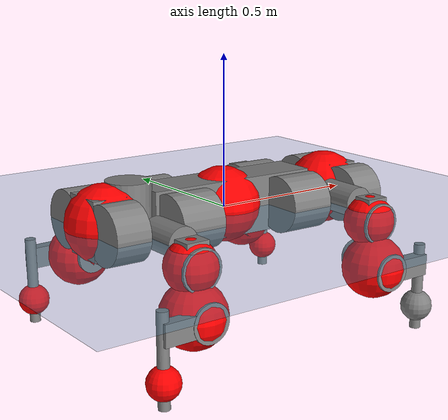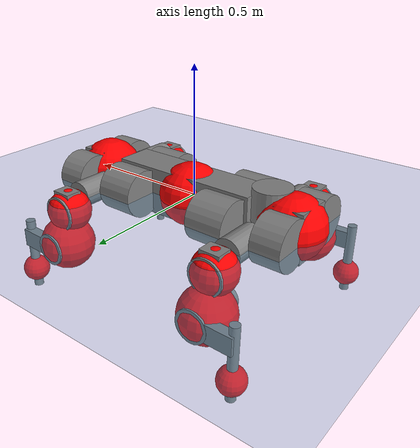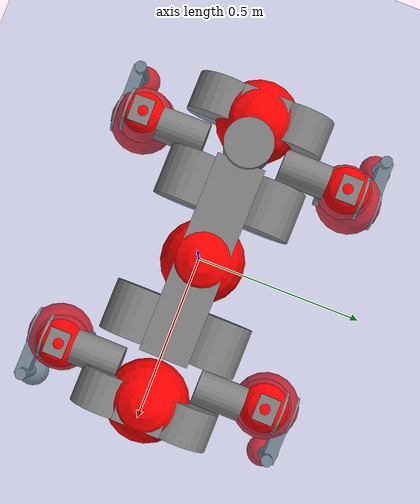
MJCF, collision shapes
<mujoco model="anymal_c">
  <compiler angle="radian" assetdir="assets" balanceinertia="true" inertiafromgeom="false"/>

  <option timestep="0.005" density="1.2" viscosity="2e-05"/>

  <size nkey="1"/>

  <visual>
    <quality shadowsize="8192"/>
    <map shadowclip="0.5"/>
  </visual>

  <default>
    <default class="/">
      <material specular="0" shininess="0.25"/>
      <geom contype="0" conaffinity="0" group="1" solref="-1000 -80"/>
      <site size="0.01 0.005 0.005" group="5"/>
      <general forcelimited="true" forcerange="-80 80" biastype="affine" gainprm="80" biasprm="0 -80 -2"/>
      <default class="anymal_c">
        <joint armature="0.01" damping="0.01" frictionloss="0.1"/>
        <default class="visual">
          <geom type="mesh" group="2"/>
          <default class="visual_zflip"/>
        </default>
        <default class="collision">
          <geom type="cylinder" group="3"/>
          <default class="foot">
            <geom size="0.03 0 0" type="sphere" condim="6" priority="1" friction="0.8 0.02 0.01" solimp="0.015 1 0.03"/>
          </default>
        </default>
      </default>
      <default class="reward_collision_sphere">
        <geom group="5" rgba="1 0 0 1"/>
      </default>
    </default>
  </default>

  <asset>
    <texture type="skybox" colorspace="auto" name="//unnamed_texture_0" builtin="gradient" rgb1="0.95 0.95 0.95" rgb2="0.95 0.95 0.95" width="100" height="600"/>
    <texture type="2d" colorspace="auto" name="texplane" builtin="checker" rgb1="0.345 0.575 0.748" rgb2="0.345 0.575 0.748" markrgb="1 1 1" width="512" height="512"/>
    <texture type="2d" colorspace="linear" name="base" file="base.png"/>
    <texture type="2d" colorspace="linear" name="top_shell" file="top_shell.png"/>
    <texture type="2d" colorspace="linear" name="bottom_shell" file="bottom_shell.png"/>
    <texture type="2d" colorspace="linear" name="remote" file="remote.png"/>
    <texture type="2d" colorspace="linear" name="hatch" file="hatch.png"/>
    <texture type="2d" colorspace="linear" name="handle" file="handle.png"/>
    <texture type="2d" colorspace="linear" name="face" file="face.png"/>
    <texture type="2d" colorspace="linear" name="battery" file="battery.png"/>
    <texture type="2d" colorspace="linear" name="lidar_cage" file="lidar_cage.png"/>
    <texture type="2d" colorspace="linear" name="depth_camera" file="depth_camera.png"/>
    <texture type="2d" colorspace="linear" name="wide_angle_camera" file="wide_angle_camera.png"/>
    <texture type="2d" colorspace="linear" name="lidar" file="lidar.png"/>
    <texture type="2d" colorspace="linear" name="drive" file="drive.png"/>
    <texture type="2d" colorspace="linear" name="hip_l" file="hip_l.png"/>
    <texture type="2d" colorspace="linear" name="shank_l" file="shank_l.png"/>
    <texture type="2d" colorspace="linear" name="foot" file="foot.png"/>
    <texture type="2d" colorspace="linear" name="thigh" file="thigh.png"/>
    <texture type="2d" colorspace="linear" name="shank_r" file="shank_r.png"/>
    <texture type="2d" colorspace="linear" name="hip_r" file="hip_r.png"/>
    <material name="MatPlane" class="/" texture="texplane" texuniform="true" texrepeat="2 2" specular="0.9" shininess="0.5"/>
    <material name="black_plastic" class="/" rgba="0.007 0.007 0.007 1"/>
    <material name="green" class="/" rgba="0.052 0.178 0.033 1"/>
    <material name="red" class="/" rgba="0.178 0.006 0.005 1"/>
    <material name="yellow" class="/" rgba="0.178 0.119 0.006 1"/>
    <material name="lwl" class="/" rgba="0.8 0.8 0.8 1"/>
    <material name="base" class="/" texture="base"/>
    <material name="top_shell" class="/" texture="top_shell"/>
    <material name="bottom_shell" class="/" texture="bottom_shell"/>
    <material name="hip_l" class="/" texture="hip_l"/>
    <material name="thigh" class="/" texture="thigh"/>
    <material name="shank_l" class="/" texture="shank_l"/>
    <material name="foot" class="/" texture="foot"/>
    <material name="hip_r" class="/" texture="hip_r"/>
    <material name="shank" class="/" texture="shank_r"/>
    <material name="hatch" class="/" texture="hatch"/>
    <material name="remote" class="/" texture="remote"/>
    <material name="handle" class="/" texture="handle"/>
    <material name="face" class="/" texture="face"/>
    <material name="depth_camera" class="/" texture="depth_camera"/>
    <material name="wide_angle_camera" class="/" texture="wide_angle_camera"/>
    <material name="battery" class="/" texture="battery"/>
    <material name="lidar_cage" class="/" texture="lidar_cage"/>
    <material name="lidar" class="/" texture="lidar"/>
    <material name="drive" class="/" texture="drive"/>
    <mesh name="base_0" class="/" file="base_0.obj"/>
    <mesh name="base_1" class="/" file="base_1.obj"/>
    <mesh name="base_2" class="/" file="base_2.obj"/>
    <mesh name="base_3" class="/" file="base_3.obj"/>
    <mesh name="base_4" class="/" file="base_4.obj"/>
    <mesh name="base_5" class="/" file="base_5.obj"/>
    <mesh name="top_shell" class="/" file="top_shell.obj"/>
    <mesh name="bottom_shell" class="/" file="bottom_shell.obj"/>
    <mesh name="remote" class="/" file="remote.obj"/>
    <mesh name="handle" class="/" file="handle.obj"/>
    <mesh name="face" class="/" file="face.obj"/>
    <mesh name="wide_angle_camera" class="/" file="wide_angle_camera.obj"/>
    <mesh name="depth_camera" class="/" file="depth_camera.obj"/>
    <mesh name="battery" class="/" file="battery.obj"/>
    <mesh name="lidar_cage" class="/" file="lidar_cage.obj"/>
    <mesh name="lidar" class="/" file="lidar.obj"/>
    <mesh name="drive" class="/" file="drive.obj"/>
    <mesh name="hip_l" class="/" file="hip_l.obj"/>
    <mesh name="thigh" class="/" file="thigh.obj"/>
    <mesh name="shank_l" class="/" file="shank_l.obj"/>
    <mesh name="foot" class="/" file="foot.obj"/>
    <mesh name="hip_r" class="/" file="hip_r.obj"/>
    <mesh name="hatch" class="/" file="hatch.obj"/>
    <mesh name="shank_r" class="/" file="shank_r.obj"/>
  </asset>

  <worldbody>
    <geom name="floor" class="/" size="100 100 0.125" type="plane" group="0" material="MatPlane"/>
    <light name="toplight_shadow" class="/" pos="0 0 5" dir="0.0990148 0.0990148 -0.990148" type="directional" ambient="0.04 0.04 0.04" diffuse="0.55 0.55 0.55" specular="0.12 0.12 0.12"/>
    <light name="toplight_fill" class="/" pos="0 0 5" dir="0.0990148 0.0990148 -0.990148" type="directional" castshadow="false" ambient="0.04 0.04 0.04" diffuse="0.3 0.3 0.3" specular="0.08 0.08 0.08"/>
    <body name="trunk" childclass="anymal_c" pos="0.00246074 0.0125874 0.00805895" quat="0.99998 0.00196592 0.00304413 -0.00518344">
      <inertial pos="0.0136495 0.0175468 0.0106512" quat="0.51187 0.500368 0.454595 0.53006" mass="21.9304" diaginertia="0.851688 10.0974 0.00499119"/>
      <joint name="//unnamed_joint_0" type="free" armature="0" damping="0" frictionloss="0"/>
      <geom name="//unnamed_geom_1" class="visual" material="green" mesh="base_0"/>
      <geom name="//unnamed_geom_2" class="visual" material="yellow" mesh="base_1"/>
      <geom name="//unnamed_geom_3" class="visual" material="red" mesh="base_2"/>
      <geom name="//unnamed_geom_4" class="visual" material="black_plastic" mesh="base_3"/>
      <geom name="//unnamed_geom_5" class="visual" material="lwl" mesh="base_4"/>
      <geom name="//unnamed_geom_6" class="visual" material="base" mesh="base_5"/>
      <geom name="trunk_1" class="collision" size="0.302597 0.0730406 0.0939094" type="box"/>
      <geom name="trunk_2" class="collision" size="0.0939094 0.0756492" pos="0.212914 0.117652 0" quat="0.707107 0 0.707107 0"/>
      <geom name="trunk_3" class="collision" size="0.0939094 0.0756492" pos="-0.212914 0.117652 0" quat="0.707107 0 0.707107 0"/>
      <geom name="trunk_4" class="collision" size="0.0939094 0.0756492" pos="0.212914 -0.117652 0" quat="0.707107 0 0.707107 0"/>
      <geom name="trunk_5" class="collision" size="0.0939094 0.0756492" pos="-0.212914 -0.117652 0" quat="0.707107 0 0.707107 0"/>
      <geom name="//unnamed_geom_12" class="visual" material="top_shell" mesh="top_shell"/>
      <geom name="//unnamed_geom_13" class="visual" material="bottom_shell" mesh="bottom_shell"/>
      <geom name="//unnamed_geom_14" class="visual" material="remote" mesh="remote"/>
      <geom name="//unnamed_geom_15" class="visual" material="handle" mesh="handle"/>
      <geom name="//unnamed_geom_16" class="visual" pos="0.40576 0 0" quat="1 0 0 0" material="face" mesh="face"/>
      <geom name="trunk_6" class="collision" size="0.0573891 0.0730406 0.0939094" pos="0.459601 0 0" type="box"/>
      <geom name="//unnamed_geom_18" class="collision" size="0.0939094 0.0573891" pos="0.459601 0.117652 0" quat="0.707107 0 0.707107 0"/>
      <geom name="//unnamed_geom_19" class="collision" size="0.0939094 0.0573891" pos="0.459601 -0.117652 0" quat="0.707107 0 0.707107 0"/>
      <geom name="//unnamed_geom_20" class="visual" pos="0.451895 0 -0.00988036" quat="0.965926 0 0.258819 0" material="depth_camera" mesh="depth_camera"/>
      <geom name="//unnamed_geom_21" class="visual" pos="0.502183 0 0.00704571" material="wide_angle_camera" mesh="wide_angle_camera"/>
      <geom name="//unnamed_geom_22" class="visual_zflip" pos="-0.40576 0 0" quat="0 0 0 1" material="face" mesh="face"/>
      <geom name="trunk_7" class="collision" size="0.0573891 0.0730406 0.0939094" pos="-0.459601 0 0" quat="0 0 0 1" type="box"/>
      <geom name="//unnamed_geom_24" class="collision" size="0.0939094 0.0573891" pos="-0.459601 -0.117652 0" quat="0 -0.707107 0 0.707107"/>
      <geom name="//unnamed_geom_25" class="collision" size="0.0939094 0.0573891" pos="-0.459601 0.117652 0" quat="0 -0.707107 0 0.707107"/>
      <geom name="//unnamed_geom_26" class="visual" pos="-0.451895 0 -0.00988036" quat="0 -0.258819 0 0.965926" material="depth_camera" mesh="depth_camera"/>
      <geom name="//unnamed_geom_27" class="visual_zflip" pos="-0.502183 0 0.00704571" quat="0 0 0 1" material="wide_angle_camera" mesh="wide_angle_camera"/>
      <geom name="//unnamed_geom_28" class="visual" material="battery" mesh="battery"/>
      <geom name="//unnamed_geom_29" class="visual" pos="0 0.137698 0.0175353" quat="0.683013 -0.183013 0.183013 0.683013" material="depth_camera" mesh="depth_camera"/>
      <geom name="//unnamed_geom_30" class="visual" pos="0 -0.137698 0.0175353" quat="0.683013 0.183013 0.183013 -0.683013" material="depth_camera" mesh="depth_camera"/>
      <geom name="//unnamed_geom_31" class="visual" pos="-0.356325 0 0.0345932" quat="1 0 0 0" material="lidar_cage" mesh="lidar_cage"/>
      <geom name="trunk_8" class="collision" size="0.0730406 0.0626062" pos="-0.356325 0 0.0628325"/>
      <geom name="//unnamed_geom_33" class="visual" pos="-0.356325 0.000275729 0.0669272" quat="0.707107 0 0 -0.707107" material="lidar" mesh="lidar"/>
      <geom name="//unnamed_geom_34" class="visual" pos="0.293577 0.174367 2.08741e-08" quat="0.258819 0.965926 0 0" material="drive" mesh="drive"/>
      <geom name="//unnamed_geom_35" class="visual" pos="0.293577 -0.174367 -2.08741e-08" quat="0.258819 -0.965926 0 0" material="drive" mesh="drive"/>
      <geom name="//unnamed_geom_36" class="visual" pos="-0.293577 0.174367 -2.08741e-08" quat="0 0 0.965926 -0.258819" material="drive" mesh="drive"/>
      <geom name="//unnamed_geom_37" class="visual" pos="-0.293577 -0.174367 2.08741e-08" quat="0 0 -0.965926 -0.258819" material="drive" mesh="drive"/>
      <geom name="//unnamed_geom_38" class="visual" pos="0.113554 0 0.0343578" quat="1 0 0 0" material="hatch" mesh="hatch"/>
      <geom name="//unnamed_geom_39" class="reward_collision_sphere" size="0.125212"/>
      <geom name="//unnamed_geom_40" class="reward_collision_sphere" size="0.125212" pos="0.440512 0 0"/>
      <geom name="//unnamed_geom_41" class="reward_collision_sphere" size="0.125212" pos="-0.440512 0 0"/>
      <site name="imu" pos="0.266857 -0.00476953 0.00308047" size="0.0104344"/>
      <camera name="track" pos="0 -3.36148 0" quat="0.707107 0.707107 0 0" mode="trackcom"/>
      <camera name="ego_camera" pos="0.440512 0 -0.0188262" quat="-0.5 -0.5 0.5 0.5"/>
      <body name="LF_HIP" pos="0.289177 0.173733 -0.00429202" quat="0.257449 0.966292 0.000705358 -0.000613324">
        <inertial pos="0.0557544 -0.0109166 -0.00599675" quat="-0.156808 0.650409 -0.189857 0.718564" mass="2.79732" diaginertia="0.00507385 0.0682135 7.28714e-05"/>
        <joint name="LF_HAA" pos="0 0 0" axis="0.999094 0.00836635 -0.0417274" range="-0.502763 0.60727" armature="0.0131853" damping="0" frictionloss="0.115057"/>
        <geom name="//unnamed_geom_42" class="visual" pos="0 0.00122793 -0.000201687" quat="0.258819 -0.965926 0 0" material="hip_l" mesh="hip_l"/>
        <geom name="//unnamed_geom_43" class="visual" pos="0.058637 -0.0798619 -0.0371578" quat="0.183013 -0.683013 0.683013 0.183013" material="drive" mesh="drive"/>
        <geom name="//unnamed_geom_44" class="collision" size="0.0521719 0.0730406" pos="0.058637 -0.0201013 -0.00324987" quat="-0.353553 -0.612372 0.612372 -0.353553"/>
        <body name="LF_THIGH" pos="0.0440264 -0.132861 -0.0273705" quat="0.180017 -0.689426 0.677494 0.18245">
          <inertial pos="0.0327451 -0.0179422 -0.1097" quat="0.99242 -0.0503185 -0.0839375 0.0743301" mass="2.93724" diaginertia="0.031686 0.30556 9.43156e-05"/>
          <joint name="LF_HFE" pos="0 0 0" axis="0.997901 0.0570804 -0.0305965" range="-2.88398 3.471" armature="0.000939981" damping="0" frictionloss="0.16287"/>
          <geom name="//unnamed_geom_45" class="visual" pos="-0.0139636 -2.20034e-05 0" quat="0.707107 0 0 -0.707107" material="thigh" mesh="thigh"/>
          <geom name="//unnamed_geom_46" class="collision" size="0.0678234 0.0417375" pos="0.0391566 0 0" quat="0.5 0.5 -0.5 -0.5"/>
          <geom name="//unnamed_geom_47" class="collision" size="0.0391289 0.0313031 0.147452" pos="0.0293674 0 -0.0665102" quat="0.707107 0 0 -0.707107" type="box"/>
          <geom name="//unnamed_geom_48" class="visual" pos="0.0981852 0 -0.134137" quat="1 0 0 0" material="drive" mesh="drive"/>
          <geom name="//unnamed_geom_49" class="collision" size="0.0521719 0.0730406" pos="0.0296611 0 -0.134137" quat="0.707107 0 0.707107 0"/>
          <geom name="//unnamed_geom_50" class="reward_collision_sphere" size="0.083475" pos="0.0244729 0 0"/>
          <body name="LF_SHANK" pos="0.0917505 -0.00647809 -0.132069" quat="0.999998 -0.000351306 0.000194658 -0.0019646">
            <inertial pos="0.0211104 -0.0908771 -0.0235421" quat="0.993717 -0.110301 0.00923287 0.0165713" mass="0.687805" diaginertia="0.0104369 0.113227 3.14927e-05"/>
            <joint name="LF_KFE" pos="0 0 0" axis="0.99987 0.0121355 0.0106348" range="-3.50191 2.85448" armature="0.0167886" damping="0.0878254" frictionloss="0.0609766"/>
            <geom name="//unnamed_geom_51" class="visual" pos="-0.00455323 -0.024278 0" quat="0.707107 0 0 -0.707107" material="shank_l" mesh="shank_l"/>
            <geom name="LF_kfe_act" class="collision" size="0.0626062 0.0208687" pos="0.0195783 0 0" quat="0.5 0.5 -0.5 -0.5"/>
            <geom name="//unnamed_geom_53" class="collision" size="0.0599966 0.035216 0.0198253" pos="0.0195783 -0.096641 0" quat="0.5 0.5 -0.5 -0.5" type="box"/>
            <geom name="//unnamed_geom_54" class="visual" pos="0.0127759 -0.155645 -0.159067" quat="0.382683 0 0 -0.92388" material="foot" mesh="foot"/>
            <geom name="LF_calf" class="collision" size="0.0182602 0.147388" pos="0.0127748 -0.147821 -0.0795337" quat="0.707107 0 0 -0.707107"/>
            <geom name="LF_foot" class="foot" size="0.0326555" pos="0.0127748 -0.147821 -0.148478" quat="0.707107 0 0 -0.707107"/>
            <geom name="//unnamed_geom_57" class="reward_collision_sphere" size="0.104344" pos="-0.0489457 0 0"/>
            <geom name="//unnamed_geom_58" class="reward_collision_sphere" size="0.0521719" pos="0.0127748 -0.147821 -0.148478"/>
            <site name="LF_foot" class="foot" pos="0.0127748 -0.147821 -0.148478" quat="0.707107 0 0 -0.707107" size="0.0104344"/>
          </body>
        </body>
      </body>
      <body name="RF_HIP" pos="0.311444 -0.164811 0.0106454" quat="0.261958 -0.965079 0.000564974 -0.000696513">
        <inertial pos="0.0609807 0.0165274 0.00583527" quat="0.200409 0.677573 0.0815722 0.702907" mass="3.39972" diaginertia="0.00592822 0.0659924 6.5599e-05"/>
        <joint name="RF_HAA" pos="0 0 0" axis="0.998421 -0.0380672 -0.0413135" stiffness="0.09175" range="-0.581789 0.414869" armature="0.0150785" damping="0" frictionloss="0.0643115"/>
        <geom name="//unnamed_geom_59" class="visual" pos="0 -0.00122792 -0.000201686" quat="0.258819 0.965926 0 0" material="hip_r" mesh="hip_r"/>
        <geom name="//unnamed_geom_60" class="visual" pos="0.058637 0.0798619 -0.0371578" quat="0.183013 0.683013 0.683013 -0.183013" material="drive" mesh="drive"/>
        <geom name="//unnamed_geom_61" class="collision" size="0.0521719 0.0730406" pos="0.058637 0.0201013 -0.00324987" quat="-0.353553 0.612372 0.612372 0.353553"/>
        <body name="RF_THIGH" pos="0.0680077 0.12487 -0.00401511" quat="0.182998 0.683061 0.682966 -0.183023">
          <inertial pos="0.019632 0.0123292 -0.132129" quat="0.993292 0.0370433 -0.0744351 0.0803622" mass="3.1881" diaginertia="0.031862 0.402724 9.71383e-05"/>
          <joint name="RF_HFE" pos="0 0 0" axis="0.999778 0.00820575 -0.0193978" range="-3.08038 2.96829" armature="0.017962" damping="0" frictionloss="0.166842"/>
          <geom name="//unnamed_geom_62" class="visual" pos="-0.0139636 -2.20034e-05 0" quat="0.707107 0 0 -0.707107" material="thigh" mesh="thigh"/>
          <geom name="//unnamed_geom_63" class="collision" size="0.0678234 0.0417375" pos="0.0391566 0 0" quat="0.5 0.5 0.5 0.5"/>
          <geom name="//unnamed_geom_64" class="collision" size="0.0391289 0.0313031 0.147452" pos="0.0293674 0 -0.0665102" quat="0.707107 0 0 0.707107" type="box"/>
          <geom name="//unnamed_geom_65" class="visual" pos="0.0981852 0 -0.134137" quat="1 0 0 0" material="drive" mesh="drive"/>
          <geom name="//unnamed_geom_66" class="collision" size="0.0521719 0.0730406" pos="0.0296611 0 -0.134137" quat="0.707107 0 0.707107 0"/>
          <geom name="//unnamed_geom_67" class="reward_collision_sphere" size="0.083475" pos="0.0244729 0 0"/>
          <body name="RF_SHANK" pos="0.10477 -0.000985736 -0.150053" quat="0.999994 0.00295991 0.000156688 -0.00149699">
            <inertial pos="0.0173664 0.0905304 -0.0419571" quat="0.993292 0.095452 -0.0280265 0.0589369" mass="0.521569" diaginertia="0.00790107 0.0804572 2.30223e-05"/>
            <joint name="RF_KFE" pos="0 0 0" axis="0.999748 -0.022452 0.000551973" range="-3.30853 2.99066" armature="0.013071" damping="0.0970816" frictionloss="0.150448"/>
            <geom name="//unnamed_geom_68" class="visual" pos="-0.0045532 0.024278 0" quat="0.707107 0 0 0.707107" material="shank" mesh="shank_r"/>
            <geom name="RF_kfe_act" class="collision" size="0.0626062 0.0208687" pos="0.0195783 0 0" quat="0.5 0.5 0.5 0.5"/>
            <geom name="//unnamed_geom_70" class="collision" size="0.0599966 0.035216 0.0198253" pos="0.0195783 0.096641 0" quat="0.5 0.5 0.5 0.5" type="box"/>
            <geom name="//unnamed_geom_71" class="visual" pos="0.0127737 0.155645 -0.159067" quat="0.382683 0 0 0.92388" material="foot" mesh="foot"/>
            <geom name="RF_calf" class="collision" size="0.0182602 0.147388" pos="0.0127748 0.147821 -0.0795337" quat="0.707107 0 0 0.707107"/>
            <geom name="RF_foot" class="foot" size="0.052273" pos="0.0127748 0.147821 -0.148478" quat="0.707107 0 0 0.707107"/>
            <geom name="//unnamed_geom_74" class="reward_collision_sphere" size="0.104344" pos="-0.0489457 0 0"/>
            <geom name="//unnamed_geom_75" class="reward_collision_sphere" size="0.0521719" pos="0.0127748 0.147821 -0.148478"/>
            <site name="RF_foot" class="foot" pos="0.0127748 0.147821 -0.148478" quat="0.707107 0 0 0.707107" size="0.0104344"/>
          </body>
        </body>
      </body>
      <body name="LH_HIP" pos="-0.293039 0.16431 -0.0136922" quat="0.00112303 0.00110698 0.965975 -0.258631">
        <inertial pos="0.049236 0.0323588 -0.0157626" quat="0.132919 0.703201 0.132362 0.6858" mass="4.32252" diaginertia="0.00633335 0.0831728 7.26813e-05"/>
        <joint name="LH_HAA" pos="0 0 0" axis="0.998888 -0.0129333 0.0453314" range="-0.791828 0.892756" armature="0.0139881" damping="0.0212751" frictionloss="0.0316869"/>
        <geom name="//unnamed_geom_76" class="visual" pos="0 -0.00122792 -0.000201686" quat="-0.258819 -0.965926 0 0" material="hip_r" mesh="hip_r"/>
        <geom name="//unnamed_geom_77" class="visual" pos="0.058637 0.0798619 -0.0371578" quat="0.183013 0.683013 0.683013 -0.183013" material="drive" mesh="drive"/>
        <geom name="//unnamed_geom_78" class="collision" size="0.0521719 0.0730406" pos="0.058637 0.0201013 -0.00324987" quat="-0.353553 0.612372 0.612372 0.353553"/>
        <body name="LH_THIGH" pos="0.0578796 0.132394 -0.0269226" quat="0.188877 0.685935 0.679458 -0.17932">
          <inertial pos="0.0270152 -0.0186889 -0.124138" quat="0.986229 -0.04188 -0.0668678 0.145353" mass="4.27847" diaginertia="0.0311683 0.346333 7.81389e-05"/>
          <joint name="LH_HFE" pos="0 0 0" axis="0.995979 -0.0727343 0.0522954" stiffness="0.0230021" range="-3.03946 3.20521" armature="0.00400362" damping="0" frictionloss="0.163054"/>
          <geom name="//unnamed_geom_79" class="visual" pos="-0.0139636 -2.20034e-05 0" quat="0.707107 0 0 -0.707107" material="thigh" mesh="thigh"/>
          <geom name="//unnamed_geom_80" class="collision" size="0.0678234 0.0417375" pos="0.0391566 0 0" quat="0.5 0.5 -0.5 -0.5"/>
          <geom name="//unnamed_geom_81" class="collision" size="0.0391289 0.0313031 0.147452" pos="0.0293674 0 -0.0665102" quat="0.707107 0 0 -0.707107" type="box"/>
          <geom name="//unnamed_geom_82" class="visual" pos="0.0981852 0 -0.134137" quat="1 0 0 0" material="drive" mesh="drive"/>
          <geom name="//unnamed_geom_83" class="collision" size="0.0521719 0.0730406" pos="0.0296611 0 -0.134137" quat="0.707107 0 0.707107 0"/>
          <geom name="//unnamed_geom_84" class="reward_collision_sphere" size="0.083475" pos="0.0244729 0 0"/>
          <body name="LH_SHANK" pos="0.107936 2.51883e-05 -0.147175" quat="0.999985 -0.00532154 0.00129095 1.58593e-05">
            <inertial pos="0.00319438 0.088187 -0.0336365" quat="0.994473 0.10181 0.0123757 0.0224826" mass="0.68185" diaginertia="0.00987179 0.134229 2.81852e-05"/>
            <joint name="LH_KFE" pos="0 0 0" axis="0.999984 -0.00473199 -0.0030641" range="-3.49276 3.10357" armature="0.00106822" damping="0" frictionloss="0.168262"/>
            <geom name="//unnamed_geom_85" class="visual" pos="-0.0045532 0.024278 0" quat="-0.707107 0 0 -0.707107" material="shank" mesh="shank_r"/>
            <geom name="LH_kfe_act" class="collision" size="0.0626062 0.0208687" pos="0.0195783 0 0" quat="0.5 0.5 -0.5 -0.5"/>
            <geom name="//unnamed_geom_87" class="collision" size="0.0599966 0.035216 0.0198253" pos="0.0195783 0.096641 0" quat="0.5 0.5 -0.5 -0.5" type="box"/>
            <geom name="//unnamed_geom_88" class="visual" pos="0.0127737 0.155645 -0.159067" quat="-0.382683 0 0 -0.92388" material="foot" mesh="foot"/>
            <geom name="LH_calf" class="collision" size="0.0182602 0.147388" pos="0.0127748 0.147821 -0.0795337" quat="0.707107 0 0 -0.707107"/>
            <geom name="LH_foot" class="foot" size="0.0297907" pos="0.0127748 0.147821 -0.148478" quat="0.707107 0 0 -0.707107"/>
            <geom name="//unnamed_geom_91" class="reward_collision_sphere" size="0.104344" pos="-0.0489457 0 0"/>
            <geom name="//unnamed_geom_92" class="reward_collision_sphere" size="0.0521719" pos="0.0127748 0.147821 -0.148478"/>
            <site name="LH_foot" class="foot" pos="0.0127748 0.147821 -0.148478" quat="0.707107 0 0 -0.707107" size="0.0104344"/>
          </body>
        </body>
      </body>
      <body name="RH_HIP" pos="-0.275978 -0.177732 -0.00719064" quat="-0.00230071 0.00849039 -0.966637 -0.256001">
        <inertial pos="0.0516829 -0.0176935 0.00124923" quat="-0.136214 0.709573 -0.12827 0.679337" mass="3.60451" diaginertia="0.00594958 0.0671589 6.58883e-05"/>
        <joint name="RH_HAA" pos="0 0 0" axis="0.999787 -0.0167779 -0.012" range="-0.591837 0.235077" armature="0.00178886" damping="0.0133867" frictionloss="0.042327"/>
        <geom name="//unnamed_geom_93" class="visual" pos="0 0.00122793 -0.000201687" quat="-0.258819 0.965926 0 0" material="hip_l" mesh="hip_l"/>
        <geom name="//unnamed_geom_94" class="visual" pos="0.058637 -0.0798619 -0.0371578" quat="-0.183013 0.683013 -0.683013 -0.183013" material="drive" mesh="drive"/>
        <geom name="//unnamed_geom_95" class="collision" size="0.0521719 0.0730406" pos="0.058637 -0.0201013 -0.00324987" quat="0.353553 0.612372 -0.612372 0.353553"/>
        <body name="RH_THIGH" pos="0.0715169 -0.136013 -0.0113792" quat="-0.182369 0.680326 -0.68633 -0.181244">
          <inertial pos="0.028414 0.013771 -0.111353" quat="0.993853 0.0116403 -0.0897629 0.0637422" mass="2.87323" diaginertia="0.026357 0.402229 0.00010206"/>
          <joint name="RH_HFE" pos="0 0 0" axis="1 -4.75556e-05 -0.000412031" range="-3.21147 2.77587" armature="0.0197068" damping="0" frictionloss="0.125616"/>
          <geom name="//unnamed_geom_96" class="visual" pos="-0.0139636 -2.20034e-05 0" quat="0.707107 0 0 -0.707107" material="thigh" mesh="thigh"/>
          <geom name="//unnamed_geom_97" class="collision" size="0.0678234 0.0417375" pos="0.0391566 0 0" quat="0.5 0.5 0.5 0.5"/>
          <geom name="//unnamed_geom_98" class="collision" size="0.0391289 0.0313031 0.147452" pos="0.0293674 0 -0.0665102" quat="0.707107 0 0 0.707107" type="box"/>
          <geom name="//unnamed_geom_99" class="visual" pos="0.0981852 0 -0.134137" quat="1 0 0 0" material="drive" mesh="drive"/>
          <geom name="//unnamed_geom_100" class="collision" size="0.0521719 0.0730406" pos="0.0296611 0 -0.134137" quat="0.707107 0 0.707107 0"/>
          <geom name="//unnamed_geom_101" class="reward_collision_sphere" size="0.083475" pos="0.0244729 0 0"/>
          <body name="RH_SHANK" pos="0.0866981 -0.00330034 -0.143861" quat="0.999997 -0.000699403 -0.00195996 -0.000989449">
            <inertial pos="0.0167578 -0.108278 -0.0372162" quat="0.992563 -0.118608 0.000745963 -0.0274053" mass="0.557353" diaginertia="0.00816546 0.106655 2.70332e-05"/>
            <joint name="RH_KFE" pos="0 0 0" axis="0.997588 0.0291622 0.0629976" range="-3.45451 2.93316" armature="0.013837" damping="0.0246306" frictionloss="0.0462691"/>
            <geom name="//unnamed_geom_102" class="visual" pos="-0.00455323 -0.024278 0" quat="0.707107 0 0 -0.707107" material="shank_l" mesh="shank_l"/>
            <geom name="RH_kfe_act" class="collision" size="0.0626062 0.0208687" pos="0.0195783 0 0" quat="0.5 0.5 0.5 0.5"/>
            <geom name="//unnamed_geom_104" class="collision" size="0.0599966 0.035216 0.0198253" pos="0.0195783 -0.096641 0" quat="0.5 0.5 0.5 0.5" type="box"/>
            <geom name="//unnamed_geom_105" class="visual" pos="0.0127759 -0.155645 -0.159067" quat="0.382683 0 0 -0.92388" material="foot" mesh="foot"/>
            <geom name="RH_calf" class="collision" size="0.0182602 0.147388" pos="0.0127748 -0.147821 -0.0795337" quat="0.707107 0 0 0.707107"/>
            <geom name="RH_foot" class="foot" size="0.00978976" pos="0.0127748 -0.147821 -0.148478" quat="0.707107 0 0 0.707107"/>
            <geom name="//unnamed_geom_108" class="reward_collision_sphere" size="0.104344" pos="-0.0489457 0 0"/>
            <geom name="//unnamed_geom_109" class="reward_collision_sphere" size="0.0521719" pos="0.0127748 -0.147821 -0.148478"/>
            <site name="RH_foot" class="foot" pos="0.0127748 -0.147821 -0.148478" quat="0.707107 0 0 0.707107" size="0.0104344"/>
          </body>
        </body>
      </body>
    </body>
  </worldbody>

  <contact>
    <pair class="/" geom1="floor" geom2="LF_foot" name="//unnamed_contact_0"/>
    <pair class="/" geom1="floor" geom2="RF_foot" name="//unnamed_contact_1"/>
    <pair class="/" geom1="floor" geom2="LH_foot" name="//unnamed_contact_2"/>
    <pair class="/" geom1="floor" geom2="RH_foot" name="//unnamed_contact_3"/>
  </contact>

  <actuator>
    <general name="LF_HAA" class="/" joint="LF_HAA" forcerange="-51.8597 51.8597" gainprm="80.153" biasprm="0 -80.153 -1.88089"/>
    <general name="LF_HFE" class="/" joint="LF_HFE" forcerange="-88.1143 88.1143" gainprm="80.153" biasprm="0 -80.153 -1.88089"/>
    <general name="LF_KFE" class="/" joint="LF_KFE" forcerange="-72.5526 72.5526" gainprm="80.153" biasprm="0 -80.153 -1.88089"/>
    <general name="RF_HAA" class="/" joint="RF_HAA" forcerange="-116.864 116.864" gainprm="80.153" biasprm="0 -80.153 -1.88089"/>
    <general name="RF_HFE" class="/" joint="RF_HFE" forcerange="-93.5091 93.5091" gainprm="80.153" biasprm="0 -80.153 -1.88089"/>
    <general name="RF_KFE" class="/" joint="RF_KFE" forcerange="-125.58 125.58" gainprm="80.153" biasprm="0 -80.153 -1.88089"/>
    <general name="LH_HAA" class="/" joint="LH_HAA" forcerange="-109.439 109.439" gainprm="80.153" biasprm="0 -80.153 -1.88089"/>
    <general name="LH_HFE" class="/" joint="LH_HFE" forcerange="-93.0943 93.0943" gainprm="80.153" biasprm="0 -80.153 -1.88089"/>
    <general name="LH_KFE" class="/" joint="LH_KFE" forcerange="-60.0121 60.0121" gainprm="80.153" biasprm="0 -80.153 -1.88089"/>
    <general name="RH_HAA" class="/" joint="RH_HAA" forcerange="-115.75 115.75" gainprm="80.153" biasprm="0 -80.153 -1.88089"/>
    <general name="RH_HFE" class="/" joint="RH_HFE" forcerange="-55.4609 55.4609" gainprm="80.153" biasprm="0 -80.153 -1.88089"/>
    <general name="RH_KFE" class="/" joint="RH_KFE" forcerange="-33.4164 33.4164" gainprm="80.153" biasprm="0 -80.153 -1.88089"/>
  </actuator>

  <sensor>
    <gyro site="imu" name="imu_angular_velocity"/>
    <velocimeter site="imu" name="imu_linear_velocity"/>
    <framelinvel objtype="site" objname="LF_foot" name="LF_foot_global_linear_velocity"/>
    <framelinvel objtype="site" objname="RF_foot" name="RF_foot_global_linear_velocity"/>
    <framelinvel objtype="site" objname="LH_foot" name="LH_foot_global_linear_velocity"/>
    <framelinvel objtype="site" objname="RH_foot" name="RH_foot_global_linear_velocity"/>
  </sensor>

  <keyframe>
    <key name="home" qpos="0 0 0.55 1 0 0 0 0 0.4 -0.8 0 -0.4 0.8 0 -0.4 0.8 0 0.4 -0.8"/>
  </keyframe>
</mujoco>
